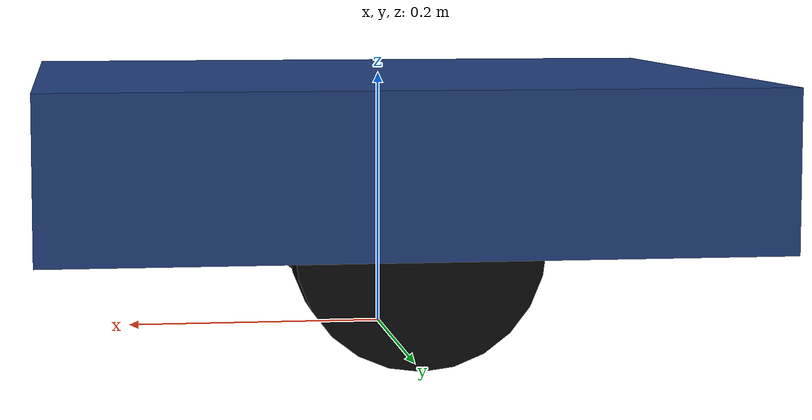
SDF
<?xml version="1.0"?>
<sdf version="1.9">
  <!-- Disposable diagnostic model. It is not the Cafe AMR production model. -->
  <model name="amr_robot_physics_test">
    <pose>0 0 0 0 0 0</pose>
    <self_collide>false</self_collide>
    <allow_auto_disable>false</allow_auto_disable>

    <!-- One rigid chassis, kept above the plane so only wheels/support contact. -->
    <link name="chassis">
      <pose>0 0 0.14 0 0 0</pose>
      <visual name="visual">
        <geometry><box><size>0.54 0.50 0.12</size></box></geometry>
        <material>
          <ambient>0.08 0.16 0.30 1</ambient>
          <diffuse>0.12 0.24 0.48 1</diffuse>
        </material>
      </visual>
      <collision name="collision">
        <geometry><box><size>0.54 0.50 0.12</size></box></geometry>
      </collision>
      <inertial>
        <mass>10.0</mass>
        <inertia>
          <ixx>0.220</ixx>
          <iyy>0.255</iyy>
          <izz>0.448</izz>
          <ixy>0</ixy><ixz>0</ixz><iyz>0</iyz>
        </inertia>
      </inertial>
    </link>

    <!-- The wheel cylinder's native axis is local Z. Roll -pi/2 maps it to Y. -->
    <link name="wheel_left_link">
      <pose>0 0.21 0.09 -1.5707963 0 0</pose>
      <visual name="visual">
        <geometry><cylinder><radius>0.09</radius><length>0.045</length></cylinder></geometry>
        <material><ambient>0.02 0.02 0.02 1</ambient><diffuse>0.04 0.04 0.04 1</diffuse></material>
      </visual>
      <collision name="collision">
        <geometry><cylinder><radius>0.09</radius><length>0.045</length></cylinder></geometry>
        <surface><friction><ode><mu>1.0</mu><mu2>1.0</mu2><slip1>0.035</slip1><slip2>0.0</slip2></ode></friction></surface>
      </collision>
      <inertial>
        <mass>0.5</mass>
        <inertia><ixx>0.00110</ixx><iyy>0.00110</iyy><izz>0.00203</izz><ixy>0</ixy><ixz>0</ixz><iyz>0</iyz></inertia>
      </inertial>
    </link>
    <joint name="wheel_left_joint" type="revolute">
      <parent>chassis</parent>
      <child>wheel_left_link</child>
      <!-- No pose: joint frame is co-located with the child link frame. -->
      <axis>
        <xyz>0 0 1</xyz>
        <limit><lower>-1.79769e+308</lower><upper>1.79769e+308</upper><effort>20</effort></limit>
      </axis>
    </joint>

    <link name="wheel_right_link">
      <pose>0 -0.21 0.09 -1.5707963 0 0</pose>
      <visual name="visual">
        <geometry><cylinder><radius>0.09</radius><length>0.045</length></cylinder></geometry>
        <material><ambient>0.02 0.02 0.02 1</ambient><diffuse>0.04 0.04 0.04 1</diffuse></material>
      </visual>
      <collision name="collision">
        <geometry><cylinder><radius>0.09</radius><length>0.045</length></cylinder></geometry>
        <surface><friction><ode><mu>1.0</mu><mu2>1.0</mu2><slip1>0.035</slip1><slip2>0.0</slip2></ode></friction></surface>
      </collision>
      <inertial>
        <mass>0.5</mass>
        <inertia><ixx>0.00110</ixx><iyy>0.00110</iyy><izz>0.00203</izz><ixy>0</ixy><ixz>0</ixz><iyz>0</iyz></inertia>
      </inertial>
    </link>
    <joint name="wheel_right_joint" type="revolute">
      <parent>chassis</parent>
      <child>wheel_right_link</child>
      <axis>
        <xyz>0 0 1</xyz>
        <limit><lower>-1.79769e+308</lower><upper>1.79769e+308</upper><effort>20</effort></limit>
      </axis>
    </joint>

    <!-- Diagnostic-only joint position/velocity telemetry. -->
    <plugin filename="gz-sim-joint-state-publisher-system" name="gz::sim::systems::JointStatePublisher">
      <joint_name>wheel_left_joint</joint_name>
      <joint_name>wheel_right_joint</joint_name>
    </plugin>

    <!-- No passive support in this first minimal candidate: only the two drive wheels contact the plane. -->
    <plugin filename="gz-sim-diff-drive-system" name="gz::sim::systems::DiffDrive">
      <left_joint>wheel_left_joint</left_joint>
      <right_joint>wheel_right_joint</right_joint>
      <wheel_separation>0.42</wheel_separation>
      <wheel_radius>0.09</wheel_radius>
      <odom_publish_frequency>30</odom_publish_frequency>
      <max_linear_acceleration>1.0</max_linear_acceleration>
      <min_linear_acceleration>-1.0</min_linear_acceleration>
      <max_angular_acceleration>2.0</max_angular_acceleration>
      <min_angular_acceleration>-2.0</min_angular_acceleration>
      <max_linear_velocity>0.6</max_linear_velocity>
      <min_linear_velocity>-0.6</min_linear_velocity>
      <max_angular_velocity>1.2</max_angular_velocity>
      <min_angular_velocity>-1.2</min_angular_velocity>
    </plugin>
  </model>
</sdf>
